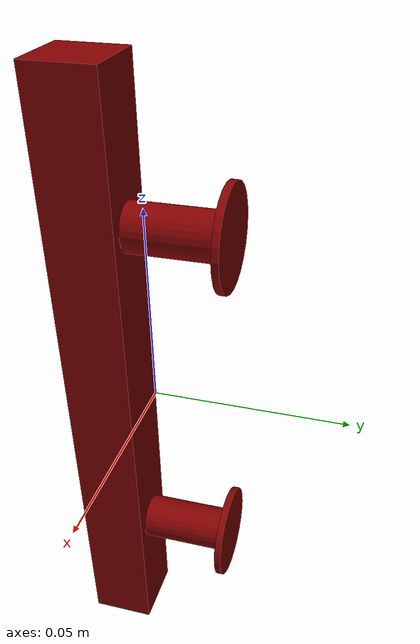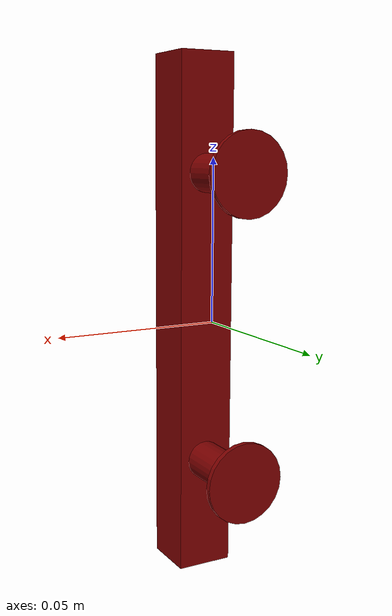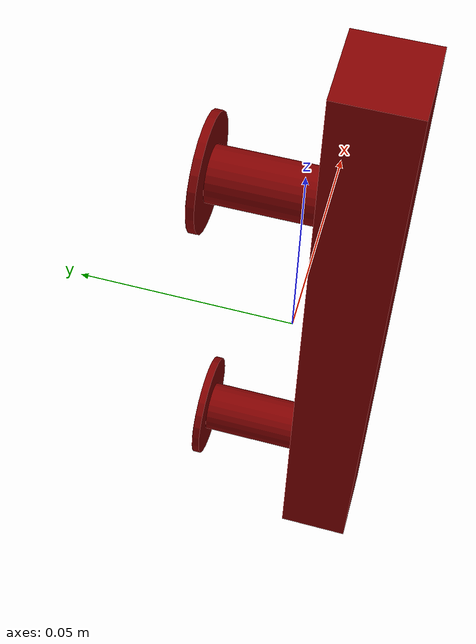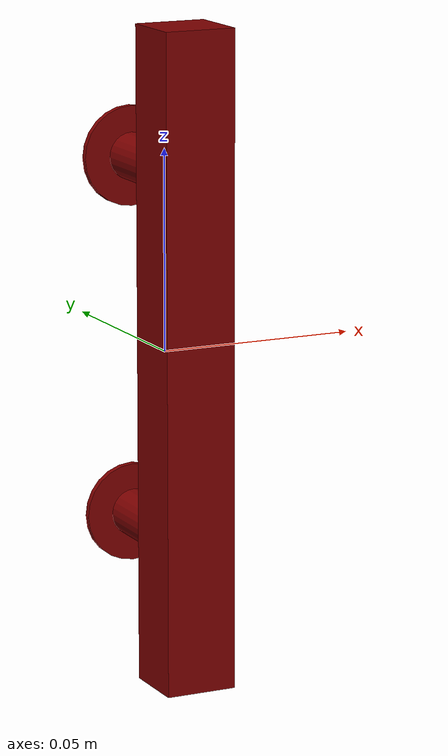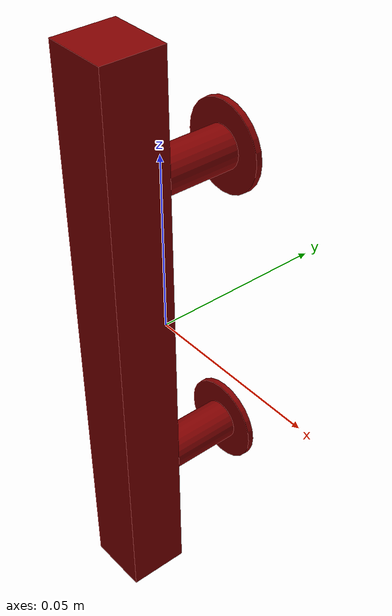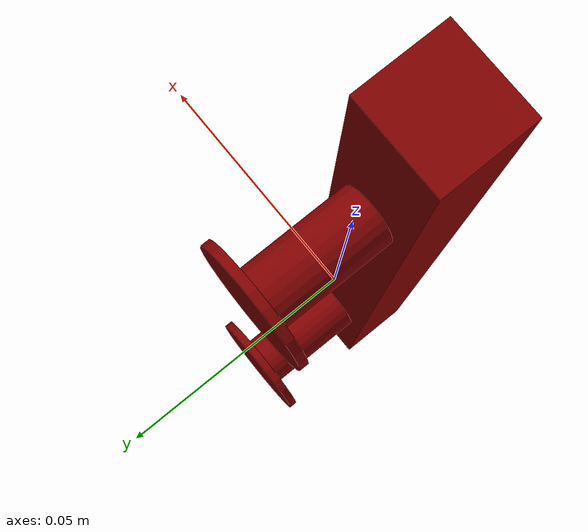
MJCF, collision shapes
<?xml version='1.0' encoding='UTF-8'?>
<mujoco model="model">
  <option timestep="0.002" gravity="0.0 0.0 -9.81"/>
  <compiler angle="radian"/>
  <asset>
    <mesh file="visuals/CabinetHandle013.obj" name="CabinetHandle013_vis"/>
    <texture file="visuals/T_BC001.png" name="tex" type="2d"/>
    <material name="mat" rgba="1 1 1 1.0" texture="tex" shininess="-1023.0" specular="0.3103448502657381"/>
  </asset>
  <default>
    <default class="visual">
      <geom conaffinity="0" contype="0" group="1" type="mesh"/>
    </default>
    <default class="collision">
      <geom group="0" rgba="0.5 0 0 0.5" density="1.0" solref="0.004 1" solimp="0.998 0.998 0.001"/>
    </default>
    <default class="spawn">
      <geom group="0" rgba="1 1 1 0.5" contype="0" conaffinity="0"/>
      <site group="0" rgba="1 1 1 0.5"/>
    </default>
    <default class="region">
      <geom group="1" conaffinity="0" contype="0" rgba="0 1 0 0" mass="0"/>
    </default>
  </default>
  <worldbody>
    <body>
      <body name="object">
        <geom mesh="CabinetHandle013_vis" type="mesh" solimp="0.998 0.998 0.001" solref="0.001 1" friction="0.95 0.3 0.1" class="visual" material="mat"/>
        <geom type="cylinder" pos="0.0 0.019690759479999542 0.045408960431814194" size="0.012468547560274601 0.0008646444766782224" quat="0.7071067094802856 0.7071068286895752 0.0 0.0" class="collision"/>
        <geom type="cylinder" pos="-4.615296233005099e-20 0.007231603842228651 0.04538153484463692" size="0.005925613921135664 0.011659577488899231" quat="0.7071067094802856 0.7071068286895752 0.0 0.0" class="collision"/>
        <geom type="cylinder" pos="0.0 0.01969076320528984 -0.04527813941240311" size="0.012468547560274601 0.0008646444766782224" quat="0.7071067094802856 0.7071068286895752 0.0 0.0" class="collision"/>
        <geom type="cylinder" pos="-4.615296233005099e-20 0.007231608033180237 -0.04530556499958038" size="0.005925613921135664 0.011659577488899231" quat="0.7071067094802856 0.7071068286895752 0.0 0.0" class="collision"/>
        <geom type="box" pos="-0.00019599893130362034 -0.01227172277867794 0.0" size="0.008918927051126957 0.008546818979084492 0.08118434995412827" quat="1.0 0.0 0.0 0.0" class="collision"/>
        <geom class="region" name="reg_main" type="box" pos="-1.1641532182693481e-09 2.7939677238464355e-09 0.0" size="0.013306266464293004 0.021579036325216294 0.08222320473194122"/>
      </body>
    </body>
  </worldbody>
  <actuator/>
</mujoco>
